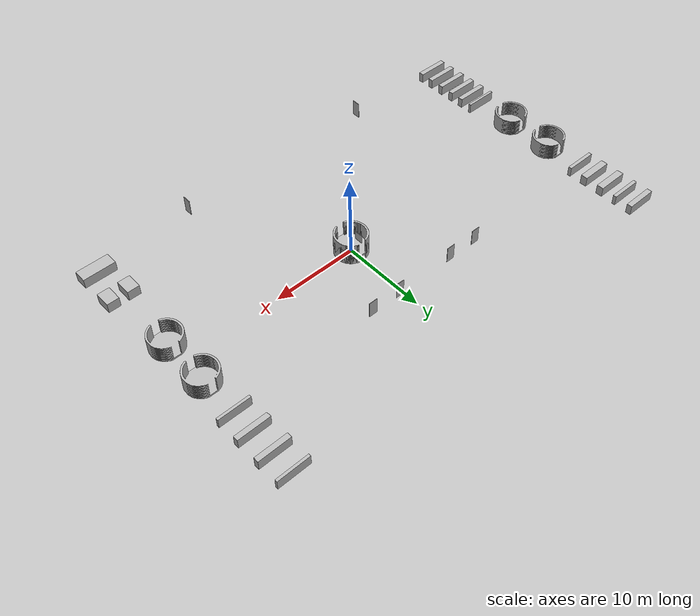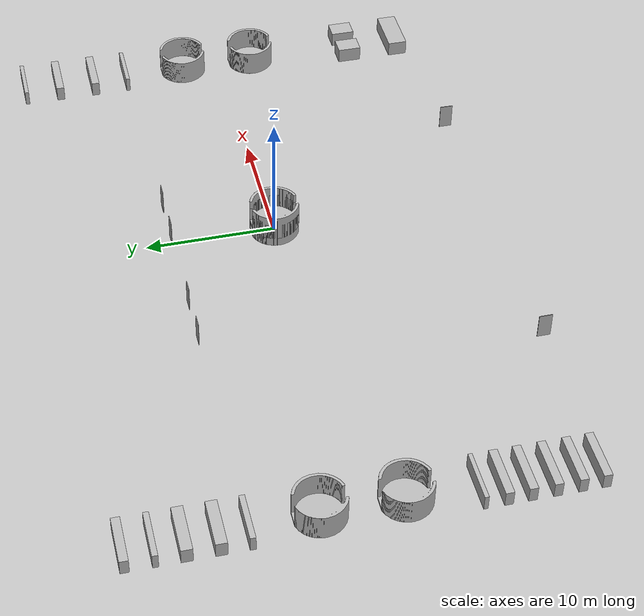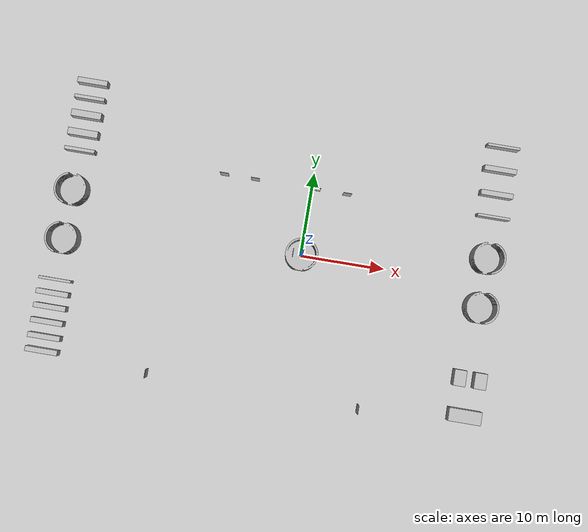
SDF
<sdf version="1.6">
 <world name="tue.library">
  <light name="sun" type="directional">
   <direction>0.5 0.1 -0.9</direction>
   <pose>0 0 10 0 0 0</pose>
   <name>sun</name>
   <specular>0.2 0.2 0.2 1</specular>
   <diffuse>0.8 0.8 0.8 1</diffuse>
   <attenuation>
    <range>1000</range>
    <quadratic>0.001</quadratic>
    <constant>0.9</constant>
    <linear>0.01</linear>
   </attenuation>
  </light>
  <include name="walls"><name>walls</name><uri>model://tue.library/walls</uri></include>
  <include name="desks-support"><name>desks-support</name><uri>model://tue.library/desks.support</uri></include>
  <include name="desks-top">
   <pose>0 0 0.695 0 0 0</pose>
   <name>desks-top</name>
   <uri>model://tue.library/desks.top</uri>
  </include>
  <include name="relax-room-1">
   <pose>-27.97 3.212 0 0 0 0</pose>
   <name>relax-room-1</name>
   <uri>model://tue.library/relax_room</uri>
  </include>
  <include name="relax-room-2">
   <pose>-27.97 -2.652 0 0 0 0</pose>
   <name>relax-room-2</name>
   <uri>model://tue.library/relax_room</uri>
  </include>
  <include name="relax-room-3">
   <pose>21.65 3.212 0 0 0 0</pose>
   <name>relax-room-3</name>
   <uri>model://tue.library/relax_room</uri>
  </include>
  <include name="relax-room-4">
   <pose>21.65 -2.652 0 0 0 0</pose>
   <name>relax-room-4</name>
   <uri>model://tue.library/relax_room</uri>
  </include>
  <include name="book_xxl">
   <pose>-27.97 16.4 0 0 0 0</pose>
   <name>book_xxl</name>
   <uri>model://tue.library/book_xxl</uri>
  </include>
  <include name="theses">
   <pose>21.65 16.7 0 0 0 0</pose>
   <name>theses</name>
   <uri>model://tue.library/theses</uri>
  </include>
  <include name="cartographics">
   <pose>21.65 -15.29 0 0 0 0</pose>
   <name>cartographics</name>
   <uri>model://tue.library/cartographics</uri>
  </include>
  <include name="journals">
   <pose>-27.97 -15.97 0 0 0 0</pose>
   <name>journals</name>
   <uri>model://tue.library/journals</uri>
  </include>
  <include name="elevator">
   <pose>-10.5 8.0 0 0 0 0</pose>
   <name>elevator</name>
   <uri>model://tue.library/door</uri>
  </include>
  <include name="lecture_room_1">
   <pose>-6.8 8.0 0 0 0 0</pose>
   <name>lecture_room_1</name>
   <uri>model://tue.library/door</uri>
  </include>
  <include name="lecture_room_2">
   <pose>0.5 8.0 0 0 0 0</pose>
   <name>lecture_room_2</name>
   <uri>model://tue.library/door</uri>
  </include>
  <include name="copier">
   <pose>4.2 8.0 0 0 0 0</pose>
   <name>copier</name>
   <uri>model://tue.library/door</uri>
  </include>
  <include name="stairway">
   <pose>-1.0 0.1 0 0 0 1.57</pose>
   <name>stairway</name>
   <uri>model://tue.library/door</uri>
  </include>
  <include name="meeting_room_1">
   <pose>9.3 -16.5 0 0 0 1.57</pose>
   <name>meeting_room_1</name>
   <uri>model://tue.library/door</uri>
  </include>
  <include name="meeting_room_4">
   <pose>-15.5 -16.5 0 0 0 1.57</pose>
   <name>meeting_room_4</name>
   <uri>model://tue.library/door</uri>
  </include>
  <physics type="ode">
   <real_time_update_rate>400.0</real_time_update_rate>
   <max_step_size>0.0025</max_step_size>
   <ode><constraints><cfm>0.0001</cfm></constraints><solver type="quick"><iters>100</iters></solver></ode>
  </physics>
  <name>tue.library</name>
 </world>
</sdf>

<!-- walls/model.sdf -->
<sdf version="1.6">
  <model name="tue.library/walls">
    <link name="1">
      <collision name="1">
        <geometry>
          <mesh>
            <uri>model://tue.library/walls/heightmap.stl</uri>
          </mesh>
        </geometry>
        <name>1</name>
      </collision>
      <visual name="1">
        <geometry>
          <mesh>
            <uri>model://tue.library/walls/heightmap.stl</uri>
          </mesh>
        </geometry>
        <name>1</name>
      </visual>
      <pose>0 0 0 0 0 0</pose>
      <name>1</name>
    </link>
    <static>true</static>
    <name>tue.library/walls</name>
  </model>
</sdf>

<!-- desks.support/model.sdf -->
<sdf version="1.6">
  <model name="tue.library/desks.support">
    <link name="1">
      <collision name="1">
        <geometry>
          <mesh>
            <uri>model://tue.library/desks.support/shape/heightmap.stl</uri>
          </mesh>
        </geometry>
        <name>1</name>
      </collision>
      <visual name="1">
        <geometry>
          <mesh>
            <uri>model://tue.library/desks.support/shape/heightmap.stl</uri>
          </mesh>
        </geometry>
        <name>1</name>
      </visual>
      <pose>0 0 0 0 0 0</pose>
      <name>1</name>
    </link>
    <static>true</static>
    <name>tue.library/desks.support</name>
  </model>
</sdf>

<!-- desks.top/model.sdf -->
<sdf version="1.6">
  <model name="tue.library/desks.top">
    <link name="1">
      <collision name="1">
        <geometry>
          <mesh>
            <uri>model://tue.library/desks.top/shape/heightmap.stl</uri>
          </mesh>
        </geometry>
        <name>1</name>
      </collision>
      <visual name="1">
        <geometry>
          <mesh>
            <uri>model://tue.library/desks.top/shape/heightmap.stl</uri>
          </mesh>
        </geometry>
        <name>1</name>
      </visual>
      <pose>0 0 0 0 0 0</pose>
      <name>1</name>
    </link>
    <static>true</static>
    <name>tue.library/desks.top</name>
  </model>
</sdf>

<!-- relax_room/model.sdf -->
<sdf version="1.6">
  <model name="tue.library/relax_room">
    <link name="1">
      <collision name="1">
        <geometry>
          <mesh>
            <uri>model://tue.library/relax_room/heightmap.stl</uri>
          </mesh>
        </geometry>
        <name>1</name>
      </collision>
      <visual name="1">
        <geometry>
          <mesh>
            <uri>model://tue.library/relax_room/heightmap.stl</uri>
          </mesh>
        </geometry>
        <name>1</name>
      </visual>
      <pose>0 0 0 0 0 0</pose>
      <name>1</name>
    </link>
    <static>true</static>
    <name>tue.library/relax_room</name>
  </model>
</sdf>

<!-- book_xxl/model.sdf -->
<sdf version="1.6">
  <model name="tue.library/book_xxl">
    <link name="1">
      <collision name="1">
        <geometry>
          <box>
            <size>3.62 0.625 1.2</size>
          </box>
        </geometry>
        <name>1</name>
      </collision>
      <visual name="1">
        <geometry>
          <box>
            <size>3.62 0.625 1.2</size>
          </box>
        </geometry>
        <name>1</name>
      </visual>
      <pose>0 0 0.6 0 0 0</pose>
      <name>1</name>
    </link>
    <link name="2">
      <collision name="2">
        <geometry>
          <box>
            <size>3.62 0.405 1.2</size>
          </box>
        </geometry>
        <name>2</name>
      </collision>
      <visual name="2">
        <geometry>
          <box>
            <size>3.62 0.405 1.2</size>
          </box>
        </geometry>
        <name>2</name>
      </visual>
      <pose>0 -2.0 0.6 0 0 0</pose>
      <name>2</name>
    </link>
    <link name="3">
      <collision name="3">
        <geometry>
          <box>
            <size>3.62 0.81 1.2</size>
          </box>
        </geometry>
        <name>3</name>
      </collision>
      <visual name="3">
        <geometry>
          <box>
            <size>3.62 0.81 1.2</size>
          </box>
        </geometry>
        <name>3</name>
      </visual>
      <pose>0 -4.05 0.6 0 0 0</pose>
      <name>3</name>
    </link>
    <link name="4">
      <collision name="4">
        <geometry>
          <box>
            <size>3.62 0.81 1.2</size>
          </box>
        </geometry>
        <name>4</name>
      </collision>
      <visual name="4">
        <geometry>
          <box>
            <size>3.62 0.81 1.2</size>
          </box>
        </geometry>
        <name>4</name>
      </visual>
      <pose>0 -6.31 0.6 0 0 0</pose>
      <name>4</name>
    </link>
    <link name="5">
      <collision name="5">
        <geometry>
          <box>
            <size>3.62 0.405 1.2</size>
          </box>
        </geometry>
        <name>5</name>
      </collision>
      <visual name="5">
        <geometry>
          <box>
            <size>3.62 0.405 1.2</size>
          </box>
        </geometry>
        <name>5</name>
      </visual>
      <pose>0 -8.36 0.6 0 0 0</pose>
      <name>5</name>
    </link>
    <static>true</static>
    <name>tue.library/book_xxl</name>
  </model>
</sdf>

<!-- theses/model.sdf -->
<sdf version="1.6">
  <model name="tue.library/theses">
    <link name="1">
      <collision name="1">
        <geometry>
          <box>
            <size>3.82 0.305 1.2</size>
          </box>
        </geometry>
        <name>1</name>
      </collision>
      <visual name="1">
        <geometry>
          <box>
            <size>3.82 0.305 1.2</size>
          </box>
        </geometry>
        <name>1</name>
      </visual>
      <pose>0 0 0.6 0 0 0</pose>
      <name>1</name>
    </link>
    <link name="2">
      <collision name="2">
        <geometry>
          <box>
            <size>3.82 0.61 1.2</size>
          </box>
        </geometry>
        <name>2</name>
      </collision>
      <visual name="2">
        <geometry>
          <box>
            <size>3.82 0.61 1.2</size>
          </box>
        </geometry>
        <name>2</name>
      </visual>
      <pose>0 -2.8 0.6 0 0 0</pose>
      <name>2</name>
    </link>
    <link name="3">
      <collision name="3">
        <geometry>
          <box>
            <size>3.82 0.61 1.2</size>
          </box>
        </geometry>
        <name>3</name>
      </collision>
      <visual name="3">
        <geometry>
          <box>
            <size>3.82 0.61 1.2</size>
          </box>
        </geometry>
        <name>3</name>
      </visual>
      <pose>0 -5.76 0.6 0 0 0</pose>
      <name>3</name>
    </link>
    <link name="4">
      <collision name="4">
        <geometry>
          <box>
            <size>3.82 0.305 1.2</size>
          </box>
        </geometry>
        <name>4</name>
      </collision>
      <visual name="4">
        <geometry>
          <box>
            <size>3.82 0.305 1.2</size>
          </box>
        </geometry>
        <name>4</name>
      </visual>
      <pose>0 -8.5 0.6 0 0 0</pose>
      <name>4</name>
    </link>
    <static>true</static>
    <name>tue.library/theses</name>
  </model>
</sdf>

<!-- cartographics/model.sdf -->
<sdf version="1.6">
  <model name="tue.library/cartographics">
    <link name="1">
      <collision name="1">
        <geometry>
          <box>
            <size>3.82 1.525 1.2</size>
          </box>
        </geometry>
        <name>1</name>
      </collision>
      <visual name="1">
        <geometry>
          <box>
            <size>3.82 1.525 1.2</size>
          </box>
        </geometry>
        <name>1</name>
      </visual>
      <pose>0 0 0.6 0 0 0</pose>
      <name>1</name>
    </link>
    <link name="2">
      <collision name="2">
        <geometry>
          <box>
            <size>1.42 1.86 1.2</size>
          </box>
        </geometry>
        <name>2</name>
      </collision>
      <visual name="2">
        <geometry>
          <box>
            <size>1.42 1.86 1.2</size>
          </box>
        </geometry>
        <name>2</name>
      </visual>
      <pose>1.2 4.26 0.6 0 0 0</pose>
      <name>2</name>
    </link>
    <link name="3">
      <collision name="3">
        <geometry>
          <box>
            <size>1.42 1.86 1.2</size>
          </box>
        </geometry>
        <name>3</name>
      </collision>
      <visual name="3">
        <geometry>
          <box>
            <size>1.42 1.86 1.2</size>
          </box>
        </geometry>
        <name>3</name>
      </visual>
      <pose>-1.2 4.26 0.6 0 0 0</pose>
      <name>3</name>
    </link>
    <static>true</static>
    <name>tue.library/cartographics</name>
  </model>
</sdf>

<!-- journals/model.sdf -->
<sdf version="1.6">
  <model name="tue.library/journals">
    <link name="1">
      <collision name="1">
        <geometry>
          <box>
            <size>3.82 0.61 1.2</size>
          </box>
        </geometry>
        <name>1</name>
      </collision>
      <visual name="1">
        <geometry>
          <box>
            <size>3.82 0.61 1.2</size>
          </box>
        </geometry>
        <name>1</name>
      </visual>
      <pose>0 0 0.6 0 0 0</pose>
      <name>1</name>
    </link>
    <link name="2">
      <collision name="2">
        <geometry>
          <box>
            <size>3.82 0.61 1.2</size>
          </box>
        </geometry>
        <name>2</name>
      </collision>
      <visual name="2">
        <geometry>
          <box>
            <size>3.82 0.61 1.2</size>
          </box>
        </geometry>
        <name>2</name>
      </visual>
      <pose>0 1.65 0.6 0 0 0</pose>
      <name>2</name>
    </link>
    <link name="3">
      <collision name="3">
        <geometry>
          <box>
            <size>3.82 0.61 1.2</size>
          </box>
        </geometry>
        <name>3</name>
      </collision>
      <visual name="3">
        <geometry>
          <box>
            <size>3.82 0.61 1.2</size>
          </box>
        </geometry>
        <name>3</name>
      </visual>
      <pose>0 3.4 0.6 0 0 0</pose>
      <name>3</name>
    </link>
    <link name="4">
      <collision name="4">
        <geometry>
          <box>
            <size>3.82 0.61 1.2</size>
          </box>
        </geometry>
        <name>4</name>
      </collision>
      <visual name="4">
        <geometry>
          <box>
            <size>3.82 0.61 1.2</size>
          </box>
        </geometry>
        <name>4</name>
      </visual>
      <pose>0 5.15 0.6 0 0 0</pose>
      <name>4</name>
    </link>
    <link name="5">
      <collision name="5">
        <geometry>
          <box>
            <size>3.82 0.61 1.2</size>
          </box>
        </geometry>
        <name>5</name>
      </collision>
      <visual name="5">
        <geometry>
          <box>
            <size>3.82 0.61 1.2</size>
          </box>
        </geometry>
        <name>5</name>
      </visual>
      <pose>0 6.8 0.6 0 0 0</pose>
      <name>5</name>
    </link>
    <link name="6">
      <collision name="6">
        <geometry>
          <box>
            <size>3.82 0.305 1.2</size>
          </box>
        </geometry>
        <name>6</name>
      </collision>
      <visual name="6">
        <geometry>
          <box>
            <size>3.82 0.305 1.2</size>
          </box>
        </geometry>
        <name>6</name>
      </visual>
      <pose>0 8.4 0.6 0 0 0</pose>
      <name>6</name>
    </link>
    <static>true</static>
    <name>tue.library/journals</name>
  </model>
</sdf>

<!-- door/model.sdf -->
<sdf version="1.6">
  <model name="tue.library/door">
    <link name="1">
      <collision name="1">
        <geometry>
          <box>
            <size>1.0 0.05 2.0</size>
          </box>
        </geometry>
        <name>1</name>
      </collision>
      <visual name="1">
        <geometry>
          <box>
            <size>1.0 0.05 2.0</size>
          </box>
        </geometry>
        <name>1</name>
      </visual>
      <pose>0 0 1.0 0 0 0</pose>
      <name>1</name>
    </link>
    <static>true</static>
    <name>tue.library/door</name>
  </model>
</sdf>
